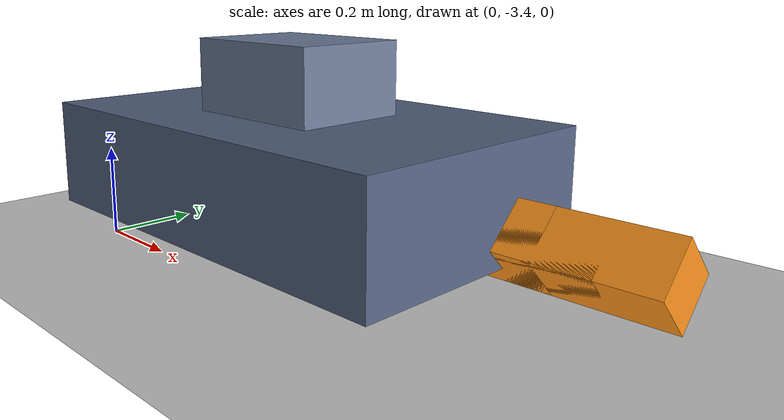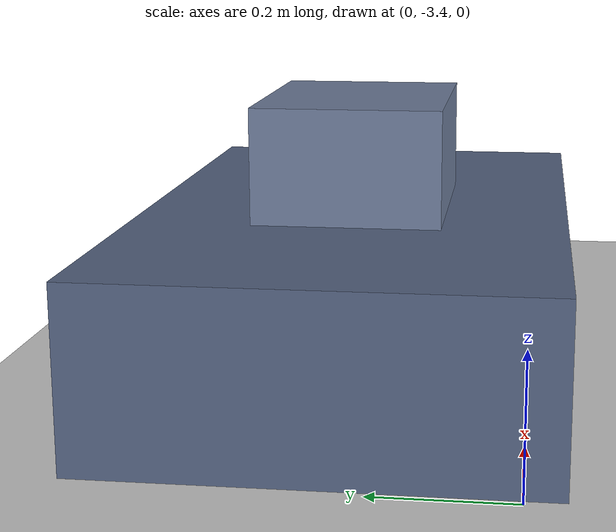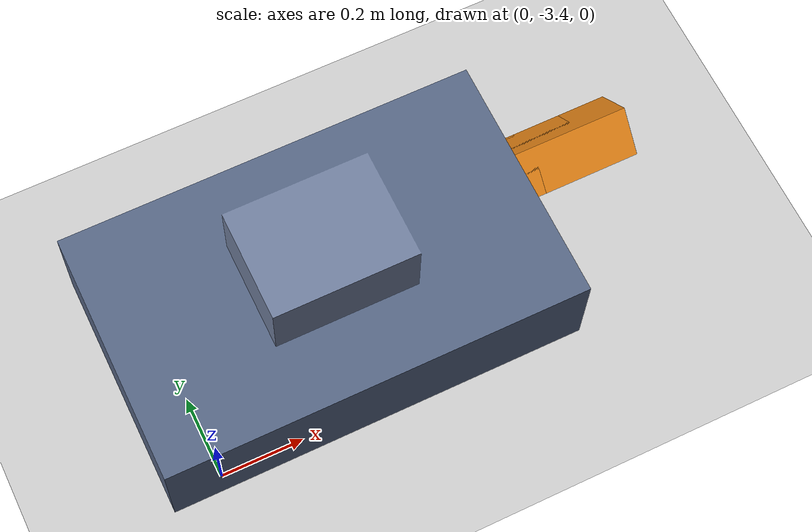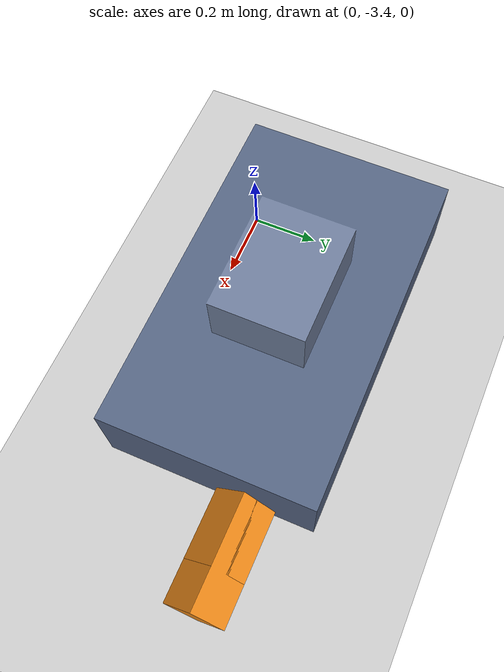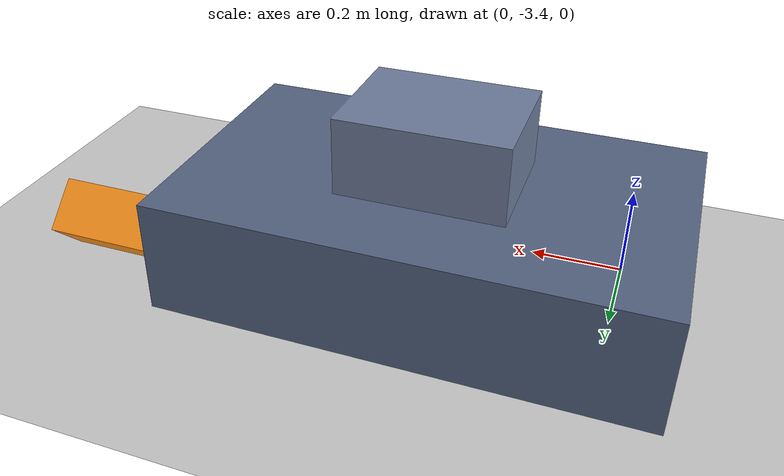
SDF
<sdf version="1.6">
 <world name="default">
  <light name="sun" type="directional">
   <pose>0 0 10 0 -0 0</pose>
   <diffuse>0.8 0.8 0.8 1</diffuse>
   <specular>0.2 0.2 0.2 1</specular>
   <attenuation>
    <range>1000</range>
    <constant>0.9</constant>
    <linear>0.01</linear>
    <quadratic>0.001</quadratic>
   </attenuation>
   <direction>-0.5 0.1 -0.9</direction>
  </light>
  <model name="ground_plane">
   <static>1</static>
   <link name="link">
    <collision name="collision">
     <geometry><plane><normal>0 0 1</normal><size>100 100</size></plane></geometry>
     <surface><friction><ode><mu>100</mu><mu2>50</mu2></ode></friction></surface>
    </collision>
    <visual name="visual">
     <cast_shadows>0</cast_shadows>
     <geometry><plane><normal>0 0 1</normal><size>100 100</size></plane></geometry>
     <material>
      <script><uri>file://media/materials/scripts/gazebo.material</uri><name>Gazebo/Grey</name></script>
     </material>
    </visual>
   </link>
  </model>
  <gravity>0 0 -9.8</gravity>
  <magnetic_field>6e-06 2.3e-05 -4.2e-05</magnetic_field>
  <atmosphere type="adiabatic"/>
  <physics name="default_physics" default="0" type="ode">
   <max_step_size>0.001</max_step_size>
   <real_time_factor>1</real_time_factor>
   <real_time_update_rate>1000</real_time_update_rate>
  </physics>
  <scene><ambient>0.4 0.4 0.4 1</ambient><background>0.7 0.7 0.7 1</background><shadows>1</shadows></scene>
  <audio><device>default</device></audio>
  <spherical_coordinates>
   <surface_model>EARTH_WGS84</surface_model>
   <latitude_deg>0</latitude_deg>
   <longitude_deg>0</longitude_deg>
   <elevation>0</elevation>
   <heading_deg>0</heading_deg>
  </spherical_coordinates>
  <model name="demo_joint_damping">
   <pose>0.370627 -3.15085 0.06 0 -0 0</pose>
   <link name="link_base">
    <inertial>
     <mass>100</mass>
     <inertia><ixx>1.2</ixx><ixy>0</ixy><ixz>0</ixz><iyy>3.64</iyy><iyz>0</iyz><izz>4.6</izz></inertia>
    </inertial>
    <visual name="visual_base">
     <geometry>
      <mesh><uri>model://demo_joint_damping/meshes/base_model.dae</uri><scale>0.001 0.001 0.001</scale></mesh>
     </geometry>
    </visual>
    <collision name="collision_base"><geometry><box><size>0.65 0.36 0.12</size></box></geometry></collision>
   </link>
   <link name="link_over_damping">
    <gravity>0</gravity>
    <pose>0.12 0 0.15 0.785398 -0 0</pose>
    <inertial>
     <pose>0 0 0.12 0 -0 0</pose>
     <mass>1</mass>
     <inertia><ixx>0.0051</ixx><ixy>0</ixy><ixz>0</ixz><iyy>0.0051</iyy><iyz>0</iyz><izz>0.0006</izz></inertia>
    </inertial>
    <visual name="visual_over_damping">
     <pose>0 0 -0.15 0 -0 0</pose>
     <geometry>
      <mesh><uri>model://demo_joint_damping/meshes/arm.stl</uri><scale>0.001 0.001 0.001</scale></mesh>
     </geometry>
     <material>
      <lighting>1</lighting>
      <script><uri>file://media/materials/scripts/gazebo.material</uri><name>Gazebo/Orange</name></script>
     </material>
    </visual>
   </link>
   <joint name="joint_over_damping" type="revolute">
    <parent>link_base</parent>
    <child>link_over_damping</child>
    <pose>0 0 0 -0.15 0 0</pose>
    <axis>
     <xyz>1 0 0</xyz>
     <dynamics>
      <damping>5</damping>
      <friction>0</friction>
      <spring_reference>-0.785398</spring_reference>
      <spring_stiffness>7</spring_stiffness>
     </dynamics>
     <use_parent_model_frame>0</use_parent_model_frame>
     <limit><lower>-1e+16</lower><upper>1e+16</upper></limit>
    </axis>
   </joint>
   <link name="link_critical_damping">
    <gravity>0</gravity>
    <pose>0 0 0.15 0.785398 -0 0</pose>
    <inertial>
     <pose>0 0 0.12 0 -0 0</pose>
     <mass>1</mass>
     <inertia><ixx>0.0051</ixx><ixy>0</ixy><ixz>0</ixz><iyy>0.0051</iyy><iyz>0</iyz><izz>0.0006</izz></inertia>
    </inertial>
    <visual name="visual_critical_damping">
     <pose>0 0 -0.15 0 -0 0</pose>
     <geometry>
      <mesh><uri>model://demo_joint_damping/meshes/arm.stl</uri><scale>0.001 0.001 0.001</scale></mesh>
     </geometry>
     <material>
      <lighting>1</lighting>
      <script><uri>file://media/materials/scripts/gazebo.material</uri><name>Gazebo/Orange</name></script>
     </material>
    </visual>
   </link>
   <joint name="joint_critical_damping" type="revolute">
    <parent>link_base</parent>
    <child>link_critical_damping</child>
    <pose>0 0 0 -0.15 0 0</pose>
    <axis>
     <xyz>1 0 0</xyz>
     <dynamics>
      <damping>0.7</damping>
      <friction>0</friction>
      <spring_reference>-0.785398</spring_reference>
      <spring_stiffness>7</spring_stiffness>
     </dynamics>
     <use_parent_model_frame>0</use_parent_model_frame>
     <limit><lower>-1e+16</lower><upper>1e+16</upper></limit>
    </axis>
   </joint>
   <link name="link_under_damping">
    <gravity>0</gravity>
    <pose>-0.12 0 0.15 0.785398 -0 0</pose>
    <inertial>
     <pose>0 0 0.12 0 -0 0</pose>
     <mass>1</mass>
     <inertia><ixx>0.0051</ixx><ixy>0</ixy><ixz>0</ixz><iyy>0.0051</iyy><iyz>0</iyz><izz>0.0006</izz></inertia>
    </inertial>
    <visual name="visual_under_damping">
     <pose>0 0 -0.15 0 -0 0</pose>
     <geometry>
      <mesh><uri>model://demo_joint_damping/meshes/arm.stl</uri><scale>0.001 0.001 0.001</scale></mesh>
     </geometry>
     <material>
      <lighting>1</lighting>
      <script><uri>file://media/materials/scripts/gazebo.material</uri><name>Gazebo/Orange</name></script>
     </material>
    </visual>
   </link>
   <joint name="joint_under_damping" type="revolute">
    <parent>link_base</parent>
    <child>link_under_damping</child>
    <pose>0 0 0 -0.15 0 0</pose>
    <axis>
     <xyz>1 0 0</xyz>
     <dynamics>
      <damping>0.05</damping>
      <friction>0</friction>
      <spring_reference>-0.785398</spring_reference>
      <spring_stiffness>7</spring_stiffness>
     </dynamics>
     <use_parent_model_frame>0</use_parent_model_frame>
     <limit><lower>-1e+16</lower><upper>1e+16</upper></limit>
    </axis>
   </joint>
  </model>
 </world>
</sdf>
